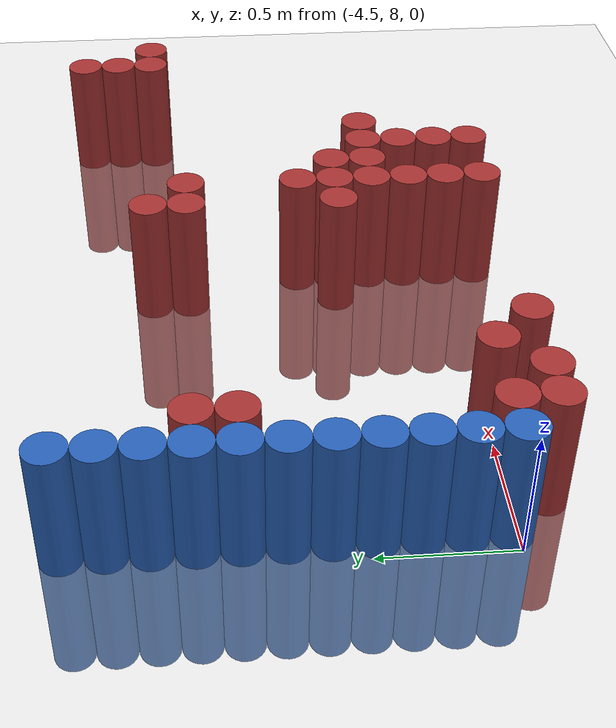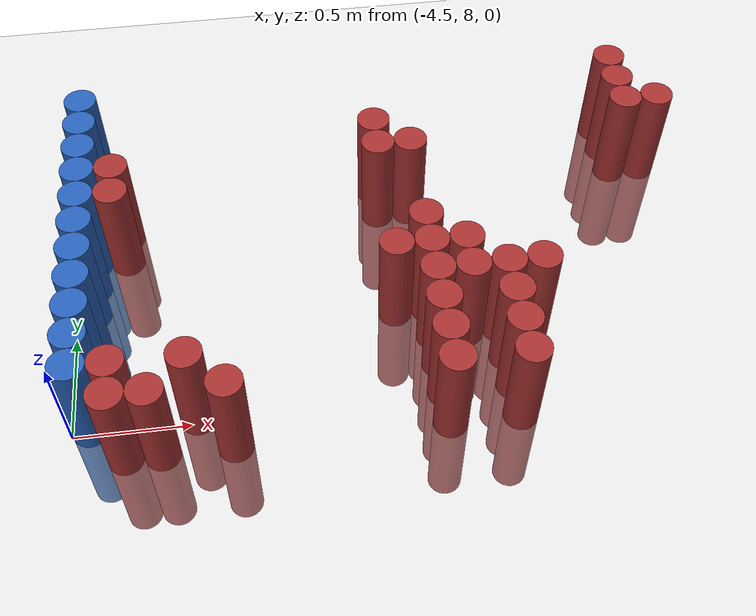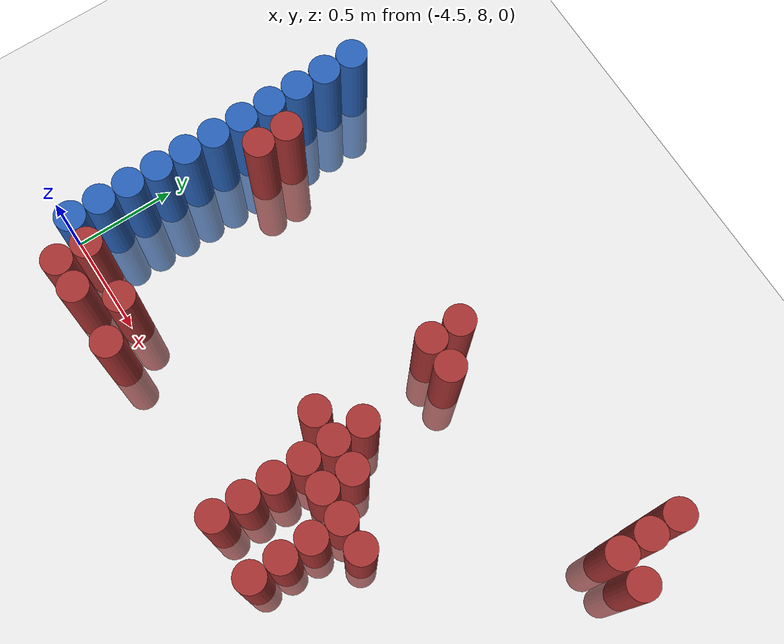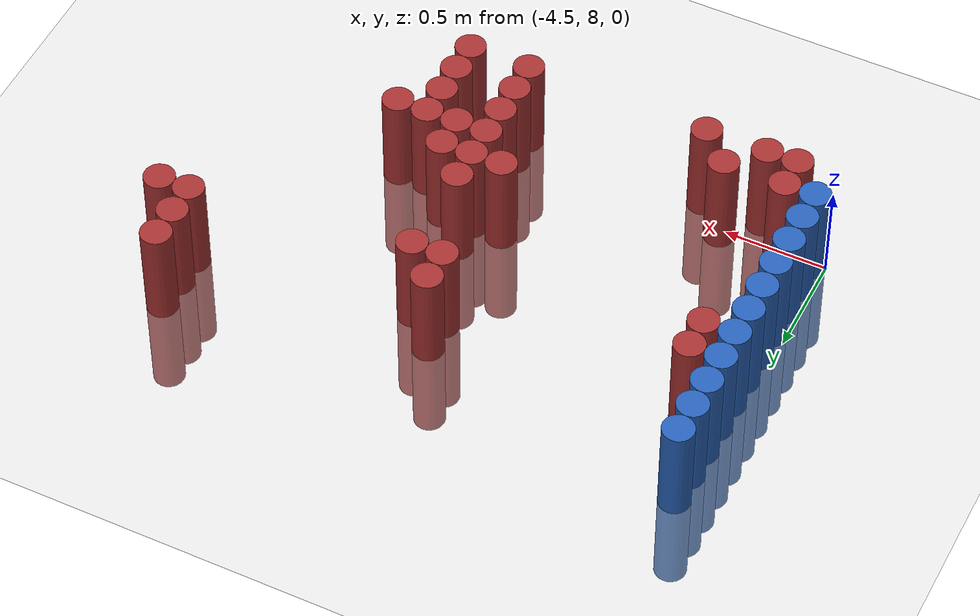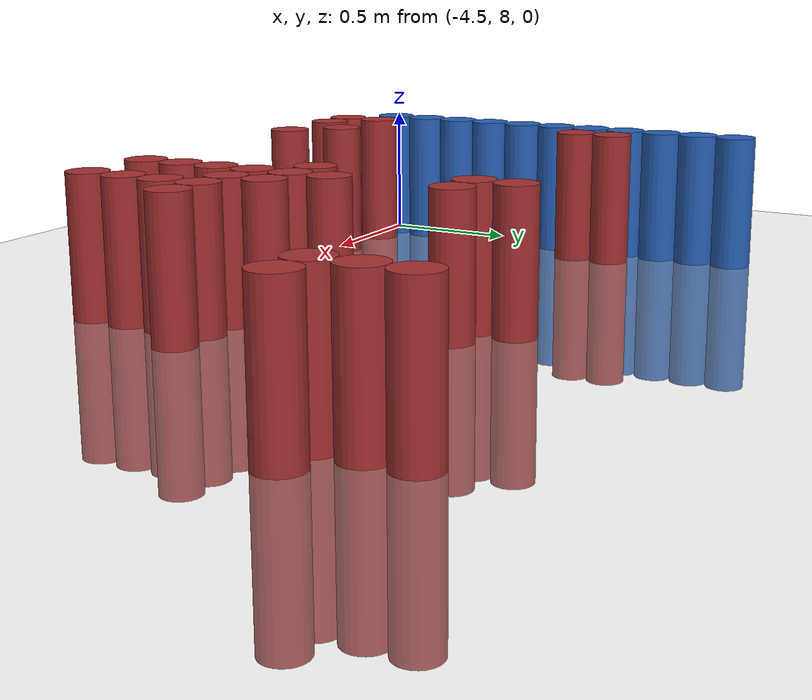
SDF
<sdf version="1.6">
 <world name="default">
  <model name="ground_plane">
   <static>1</static>
   <link name="link">
    <collision name="collision">
     <geometry><plane><normal>0 0 1</normal><size>100 100</size></plane></geometry>
     <surface><friction><ode><mu>100</mu><mu2>50</mu2></ode></friction></surface>
    </collision>
    <visual name="visual">
     <cast_shadows>0</cast_shadows>
     <geometry><plane><normal>0 0 1</normal><size>100 100</size></plane></geometry>
     <material>
      <script><uri>file://media/materials/scripts/gazebo.material</uri><name>Gazebo/Grey</name></script>
     </material>
    </visual>
   </link>
  </model>
  <model name="unit_cylinder_115">
   <static>1</static>
   <pose>-4.425000 8.025000 0.000000 0.000000 0.000000 0.000000</pose>
   <link name="link">
    <inertial>
     <mass>1</mass>
     <inertia><ixx>0.145833</ixx><ixy>0</ixy><ixz>0</ixz><iyy>0.145833</iyy><iyz>0</iyz><izz>0.125</izz></inertia>
    </inertial>
    <collision name="collision">
     <geometry><cylinder><radius>0.075000</radius><length>1</length></cylinder></geometry>
    </collision>
    <visual name="visual">
     <geometry><cylinder><radius>0.075000</radius><length>1</length></cylinder></geometry>
     <material>
      <ambient>0.152000 0.379000 0.720000 1</ambient>
      <diffuse>0.152000 0.379000 0.720000 1</diffuse>
     </material>
     <material>
      <script><name>Gazebo/Grey</name><uri>file://media/materials/scripts/gazebo.material</uri></script>
     </material>
    </visual>
    <sensor name="sensor_contact" type="contact"><contact><collision>collision</collision></contact></sensor>
   </link>
   <plugin filename="gz-sim-touchplugin-system" name="gz::sim::systems::TouchPlugin">
    <target>robot</target>
    <namespace>robot</namespace>
    <time>0.001</time>
    <enabled>true</enabled>
   </plugin>
  </model>
  <model name="unit_cylinder_116">
   <static>1</static>
   <pose>-4.425000 8.175000 0.000000 0.000000 0.000000 0.000000</pose>
   <link name="link">
    <inertial>
     <mass>1</mass>
     <inertia><ixx>0.145833</ixx><ixy>0</ixy><ixz>0</ixz><iyy>0.145833</iyy><iyz>0</iyz><izz>0.125</izz></inertia>
    </inertial>
    <collision name="collision">
     <geometry><cylinder><radius>0.075000</radius><length>1</length></cylinder></geometry>
    </collision>
    <visual name="visual">
     <geometry><cylinder><radius>0.075000</radius><length>1</length></cylinder></geometry>
     <material>
      <ambient>0.152000 0.379000 0.720000 1</ambient>
      <diffuse>0.152000 0.379000 0.720000 1</diffuse>
     </material>
     <material>
      <script><name>Gazebo/Grey</name><uri>file://media/materials/scripts/gazebo.material</uri></script>
     </material>
    </visual>
    <sensor name="sensor_contact" type="contact"><contact><collision>collision</collision></contact></sensor>
   </link>
   <plugin filename="gz-sim-touchplugin-system" name="gz::sim::systems::TouchPlugin">
    <target>robot</target>
    <namespace>robot</namespace>
    <time>0.001</time>
    <enabled>true</enabled>
   </plugin>
  </model>
  <model name="unit_cylinder_117">
   <static>1</static>
   <pose>-4.425000 8.325000 0.000000 0.000000 0.000000 0.000000</pose>
   <link name="link">
    <inertial>
     <mass>1</mass>
     <inertia><ixx>0.145833</ixx><ixy>0</ixy><ixz>0</ixz><iyy>0.145833</iyy><iyz>0</iyz><izz>0.125</izz></inertia>
    </inertial>
    <collision name="collision">
     <geometry><cylinder><radius>0.075000</radius><length>1</length></cylinder></geometry>
    </collision>
    <visual name="visual">
     <geometry><cylinder><radius>0.075000</radius><length>1</length></cylinder></geometry>
     <material>
      <ambient>0.152000 0.379000 0.720000 1</ambient>
      <diffuse>0.152000 0.379000 0.720000 1</diffuse>
     </material>
     <material>
      <script><name>Gazebo/Grey</name><uri>file://media/materials/scripts/gazebo.material</uri></script>
     </material>
    </visual>
    <sensor name="sensor_contact" type="contact"><contact><collision>collision</collision></contact></sensor>
   </link>
   <plugin filename="gz-sim-touchplugin-system" name="gz::sim::systems::TouchPlugin">
    <target>robot</target>
    <namespace>robot</namespace>
    <time>0.001</time>
    <enabled>true</enabled>
   </plugin>
  </model>
  <model name="unit_cylinder_118">
   <static>1</static>
   <pose>-4.425000 8.475000 0.000000 0.000000 0.000000 0.000000</pose>
   <link name="link">
    <inertial>
     <mass>1</mass>
     <inertia><ixx>0.145833</ixx><ixy>0</ixy><ixz>0</ixz><iyy>0.145833</iyy><iyz>0</iyz><izz>0.125</izz></inertia>
    </inertial>
    <collision name="collision">
     <geometry><cylinder><radius>0.075000</radius><length>1</length></cylinder></geometry>
    </collision>
    <visual name="visual">
     <geometry><cylinder><radius>0.075000</radius><length>1</length></cylinder></geometry>
     <material>
      <ambient>0.152000 0.379000 0.720000 1</ambient>
      <diffuse>0.152000 0.379000 0.720000 1</diffuse>
     </material>
     <material>
      <script><name>Gazebo/Grey</name><uri>file://media/materials/scripts/gazebo.material</uri></script>
     </material>
    </visual>
    <sensor name="sensor_contact" type="contact"><contact><collision>collision</collision></contact></sensor>
   </link>
   <plugin filename="gz-sim-touchplugin-system" name="gz::sim::systems::TouchPlugin">
    <target>robot</target>
    <namespace>robot</namespace>
    <time>0.001</time>
    <enabled>true</enabled>
   </plugin>
  </model>
  <model name="unit_cylinder_119">
   <static>1</static>
   <pose>-4.425000 8.625000 0.000000 0.000000 0.000000 0.000000</pose>
   <link name="link">
    <inertial>
     <mass>1</mass>
     <inertia><ixx>0.145833</ixx><ixy>0</ixy><ixz>0</ixz><iyy>0.145833</iyy><iyz>0</iyz><izz>0.125</izz></inertia>
    </inertial>
    <collision name="collision">
     <geometry><cylinder><radius>0.075000</radius><length>1</length></cylinder></geometry>
    </collision>
    <visual name="visual">
     <geometry><cylinder><radius>0.075000</radius><length>1</length></cylinder></geometry>
     <material>
      <ambient>0.152000 0.379000 0.720000 1</ambient>
      <diffuse>0.152000 0.379000 0.720000 1</diffuse>
     </material>
     <material>
      <script><name>Gazebo/Grey</name><uri>file://media/materials/scripts/gazebo.material</uri></script>
     </material>
    </visual>
    <sensor name="sensor_contact" type="contact"><contact><collision>collision</collision></contact></sensor>
   </link>
   <plugin filename="gz-sim-touchplugin-system" name="gz::sim::systems::TouchPlugin">
    <target>robot</target>
    <namespace>robot</namespace>
    <time>0.001</time>
    <enabled>true</enabled>
   </plugin>
  </model>
  <model name="unit_cylinder_120">
   <static>1</static>
   <pose>-4.425000 8.775000 0.000000 0.000000 0.000000 0.000000</pose>
   <link name="link">
    <inertial>
     <mass>1</mass>
     <inertia><ixx>0.145833</ixx><ixy>0</ixy><ixz>0</ixz><iyy>0.145833</iyy><iyz>0</iyz><izz>0.125</izz></inertia>
    </inertial>
    <collision name="collision">
     <geometry><cylinder><radius>0.075000</radius><length>1</length></cylinder></geometry>
    </collision>
    <visual name="visual">
     <geometry><cylinder><radius>0.075000</radius><length>1</length></cylinder></geometry>
     <material>
      <ambient>0.152000 0.379000 0.720000 1</ambient>
      <diffuse>0.152000 0.379000 0.720000 1</diffuse>
     </material>
     <material>
      <script><name>Gazebo/Grey</name><uri>file://media/materials/scripts/gazebo.material</uri></script>
     </material>
    </visual>
    <sensor name="sensor_contact" type="contact"><contact><collision>collision</collision></contact></sensor>
   </link>
   <plugin filename="gz-sim-touchplugin-system" name="gz::sim::systems::TouchPlugin">
    <target>robot</target>
    <namespace>robot</namespace>
    <time>0.001</time>
    <enabled>true</enabled>
   </plugin>
  </model>
  <model name="unit_cylinder_121">
   <static>1</static>
   <pose>-4.425000 8.925000 0.000000 0.000000 0.000000 0.000000</pose>
   <link name="link">
    <inertial>
     <mass>1</mass>
     <inertia><ixx>0.145833</ixx><ixy>0</ixy><ixz>0</ixz><iyy>0.145833</iyy><iyz>0</iyz><izz>0.125</izz></inertia>
    </inertial>
    <collision name="collision">
     <geometry><cylinder><radius>0.075000</radius><length>1</length></cylinder></geometry>
    </collision>
    <visual name="visual">
     <geometry><cylinder><radius>0.075000</radius><length>1</length></cylinder></geometry>
     <material>
      <ambient>0.152000 0.379000 0.720000 1</ambient>
      <diffuse>0.152000 0.379000 0.720000 1</diffuse>
     </material>
     <material>
      <script><name>Gazebo/Grey</name><uri>file://media/materials/scripts/gazebo.material</uri></script>
     </material>
    </visual>
    <sensor name="sensor_contact" type="contact"><contact><collision>collision</collision></contact></sensor>
   </link>
   <plugin filename="gz-sim-touchplugin-system" name="gz::sim::systems::TouchPlugin">
    <target>robot</target>
    <namespace>robot</namespace>
    <time>0.001</time>
    <enabled>true</enabled>
   </plugin>
  </model>
  <model name="unit_cylinder_122">
   <static>1</static>
   <pose>-4.425000 9.075000 0.000000 0.000000 0.000000 0.000000</pose>
   <link name="link">
    <inertial>
     <mass>1</mass>
     <inertia><ixx>0.145833</ixx><ixy>0</ixy><ixz>0</ixz><iyy>0.145833</iyy><iyz>0</iyz><izz>0.125</izz></inertia>
    </inertial>
    <collision name="collision">
     <geometry><cylinder><radius>0.075000</radius><length>1</length></cylinder></geometry>
    </collision>
    <visual name="visual">
     <geometry><cylinder><radius>0.075000</radius><length>1</length></cylinder></geometry>
     <material>
      <ambient>0.152000 0.379000 0.720000 1</ambient>
      <diffuse>0.152000 0.379000 0.720000 1</diffuse>
     </material>
     <material>
      <script><name>Gazebo/Grey</name><uri>file://media/materials/scripts/gazebo.material</uri></script>
     </material>
    </visual>
    <sensor name="sensor_contact" type="contact"><contact><collision>collision</collision></contact></sensor>
   </link>
   <plugin filename="gz-sim-touchplugin-system" name="gz::sim::systems::TouchPlugin">
    <target>robot</target>
    <namespace>robot</namespace>
    <time>0.001</time>
    <enabled>true</enabled>
   </plugin>
  </model>
  <model name="unit_cylinder_123">
   <static>1</static>
   <pose>-4.425000 9.225000 0.000000 0.000000 0.000000 0.000000</pose>
   <link name="link">
    <inertial>
     <mass>1</mass>
     <inertia><ixx>0.145833</ixx><ixy>0</ixy><ixz>0</ixz><iyy>0.145833</iyy><iyz>0</iyz><izz>0.125</izz></inertia>
    </inertial>
    <collision name="collision">
     <geometry><cylinder><radius>0.075000</radius><length>1</length></cylinder></geometry>
    </collision>
    <visual name="visual">
     <geometry><cylinder><radius>0.075000</radius><length>1</length></cylinder></geometry>
     <material>
      <ambient>0.152000 0.379000 0.720000 1</ambient>
      <diffuse>0.152000 0.379000 0.720000 1</diffuse>
     </material>
     <material>
      <script><name>Gazebo/Grey</name><uri>file://media/materials/scripts/gazebo.material</uri></script>
     </material>
    </visual>
    <sensor name="sensor_contact" type="contact"><contact><collision>collision</collision></contact></sensor>
   </link>
   <plugin filename="gz-sim-touchplugin-system" name="gz::sim::systems::TouchPlugin">
    <target>robot</target>
    <namespace>robot</namespace>
    <time>0.001</time>
    <enabled>true</enabled>
   </plugin>
  </model>
  <model name="unit_cylinder_124">
   <static>1</static>
   <pose>-4.425000 9.375000 0.000000 0.000000 0.000000 0.000000</pose>
   <link name="link">
    <inertial>
     <mass>1</mass>
     <inertia><ixx>0.145833</ixx><ixy>0</ixy><ixz>0</ixz><iyy>0.145833</iyy><iyz>0</iyz><izz>0.125</izz></inertia>
    </inertial>
    <collision name="collision">
     <geometry><cylinder><radius>0.075000</radius><length>1</length></cylinder></geometry>
    </collision>
    <visual name="visual">
     <geometry><cylinder><radius>0.075000</radius><length>1</length></cylinder></geometry>
     <material>
      <ambient>0.152000 0.379000 0.720000 1</ambient>
      <diffuse>0.152000 0.379000 0.720000 1</diffuse>
     </material>
     <material>
      <script><name>Gazebo/Grey</name><uri>file://media/materials/scripts/gazebo.material</uri></script>
     </material>
    </visual>
    <sensor name="sensor_contact" type="contact"><contact><collision>collision</collision></contact></sensor>
   </link>
   <plugin filename="gz-sim-touchplugin-system" name="gz::sim::systems::TouchPlugin">
    <target>robot</target>
    <namespace>robot</namespace>
    <time>0.001</time>
    <enabled>true</enabled>
   </plugin>
  </model>
  <model name="unit_cylinder_125">
   <static>1</static>
   <pose>-4.425000 9.525000 0.000000 0.000000 0.000000 0.000000</pose>
   <link name="link">
    <inertial>
     <mass>1</mass>
     <inertia><ixx>0.145833</ixx><ixy>0</ixy><ixz>0</ixz><iyy>0.145833</iyy><iyz>0</iyz><izz>0.125</izz></inertia>
    </inertial>
    <collision name="collision">
     <geometry><cylinder><radius>0.075000</radius><length>1</length></cylinder></geometry>
    </collision>
    <visual name="visual">
     <geometry><cylinder><radius>0.075000</radius><length>1</length></cylinder></geometry>
     <material>
      <ambient>0.152000 0.379000 0.720000 1</ambient>
      <diffuse>0.152000 0.379000 0.720000 1</diffuse>
     </material>
     <material>
      <script><name>Gazebo/Grey</name><uri>file://media/materials/scripts/gazebo.material</uri></script>
     </material>
    </visual>
    <sensor name="sensor_contact" type="contact"><contact><collision>collision</collision></contact></sensor>
   </link>
   <plugin filename="gz-sim-touchplugin-system" name="gz::sim::systems::TouchPlugin">
    <target>robot</target>
    <namespace>robot</namespace>
    <time>0.001</time>
    <enabled>true</enabled>
   </plugin>
  </model>
  <model name="unit_cylinder_139">
   <static>1</static>
   <pose>-4.275000 7.875000 0.000000 0.000000 0.000000 0.000000</pose>
   <link name="link">
    <inertial>
     <mass>1</mass>
     <inertia><ixx>0.145833</ixx><ixy>0</ixy><ixz>0</ixz><iyy>0.145833</iyy><iyz>0</iyz><izz>0.125</izz></inertia>
    </inertial>
    <collision name="collision">
     <geometry><cylinder><radius>0.075000</radius><length>1</length></cylinder></geometry>
    </collision>
    <visual name="visual">
     <geometry><cylinder><radius>0.075000</radius><length>1</length></cylinder></geometry>
     <material>
      <ambient>0.648000 0.192000 0.192000 1</ambient>
      <diffuse>0.648000 0.192000 0.192000 1</diffuse>
     </material>
     <material>
      <script><name>Gazebo/Grey</name><uri>file://media/materials/scripts/gazebo.material</uri></script>
     </material>
    </visual>
    <sensor name="sensor_contact" type="contact"><contact><collision>collision</collision></contact></sensor>
   </link>
   <plugin filename="gz-sim-touchplugin-system" name="gz::sim::systems::TouchPlugin">
    <target>robot</target>
    <namespace>robot</namespace>
    <time>0.001</time>
    <enabled>true</enabled>
   </plugin>
  </model>
  <model name="unit_cylinder_140">
   <static>1</static>
   <pose>-4.275000 8.025000 0.000000 0.000000 0.000000 0.000000</pose>
   <link name="link">
    <inertial>
     <mass>1</mass>
     <inertia><ixx>0.145833</ixx><ixy>0</ixy><ixz>0</ixz><iyy>0.145833</iyy><iyz>0</iyz><izz>0.125</izz></inertia>
    </inertial>
    <collision name="collision">
     <geometry><cylinder><radius>0.075000</radius><length>1</length></cylinder></geometry>
    </collision>
    <visual name="visual">
     <geometry><cylinder><radius>0.075000</radius><length>1</length></cylinder></geometry>
     <material>
      <ambient>0.648000 0.192000 0.192000 1</ambient>
      <diffuse>0.648000 0.192000 0.192000 1</diffuse>
     </material>
     <material>
      <script><name>Gazebo/Grey</name><uri>file://media/materials/scripts/gazebo.material</uri></script>
     </material>
    </visual>
    <sensor name="sensor_contact" type="contact"><contact><collision>collision</collision></contact></sensor>
   </link>
   <plugin filename="gz-sim-touchplugin-system" name="gz::sim::systems::TouchPlugin">
    <target>robot</target>
    <namespace>robot</namespace>
    <time>0.001</time>
    <enabled>true</enabled>
   </plugin>
  </model>
  <model name="unit_cylinder_141">
   <static>1</static>
   <pose>-4.275000 8.925000 0.000000 0.000000 0.000000 0.000000</pose>
   <link name="link">
    <inertial>
     <mass>1</mass>
     <inertia><ixx>0.145833</ixx><ixy>0</ixy><ixz>0</ixz><iyy>0.145833</iyy><iyz>0</iyz><izz>0.125</izz></inertia>
    </inertial>
    <collision name="collision">
     <geometry><cylinder><radius>0.075000</radius><length>1</length></cylinder></geometry>
    </collision>
    <visual name="visual">
     <geometry><cylinder><radius>0.075000</radius><length>1</length></cylinder></geometry>
     <material>
      <ambient>0.648000 0.192000 0.192000 1</ambient>
      <diffuse>0.648000 0.192000 0.192000 1</diffuse>
     </material>
     <material>
      <script><name>Gazebo/Grey</name><uri>file://media/materials/scripts/gazebo.material</uri></script>
     </material>
    </visual>
    <sensor name="sensor_contact" type="contact"><contact><collision>collision</collision></contact></sensor>
   </link>
   <plugin filename="gz-sim-touchplugin-system" name="gz::sim::systems::TouchPlugin">
    <target>robot</target>
    <namespace>robot</namespace>
    <time>0.001</time>
    <enabled>true</enabled>
   </plugin>
  </model>
  <model name="unit_cylinder_142">
   <static>1</static>
   <pose>-4.275000 9.075000 0.000000 0.000000 0.000000 0.000000</pose>
   <link name="link">
    <inertial>
     <mass>1</mass>
     <inertia><ixx>0.145833</ixx><ixy>0</ixy><ixz>0</ixz><iyy>0.145833</iyy><iyz>0</iyz><izz>0.125</izz></inertia>
    </inertial>
    <collision name="collision">
     <geometry><cylinder><radius>0.075000</radius><length>1</length></cylinder></geometry>
    </collision>
    <visual name="visual">
     <geometry><cylinder><radius>0.075000</radius><length>1</length></cylinder></geometry>
     <material>
      <ambient>0.648000 0.192000 0.192000 1</ambient>
      <diffuse>0.648000 0.192000 0.192000 1</diffuse>
     </material>
     <material>
      <script><name>Gazebo/Grey</name><uri>file://media/materials/scripts/gazebo.material</uri></script>
     </material>
    </visual>
    <sensor name="sensor_contact" type="contact"><contact><collision>collision</collision></contact></sensor>
   </link>
   <plugin filename="gz-sim-touchplugin-system" name="gz::sim::systems::TouchPlugin">
    <target>robot</target>
    <namespace>robot</namespace>
    <time>0.001</time>
    <enabled>true</enabled>
   </plugin>
  </model>
  <model name="unit_cylinder_150">
   <static>1</static>
   <pose>-4.125000 7.875000 0.000000 0.000000 0.000000 0.000000</pose>
   <link name="link">
    <inertial>
     <mass>1</mass>
     <inertia><ixx>0.145833</ixx><ixy>0</ixy><ixz>0</ixz><iyy>0.145833</iyy><iyz>0</iyz><izz>0.125</izz></inertia>
    </inertial>
    <collision name="collision">
     <geometry><cylinder><radius>0.075000</radius><length>1</length></cylinder></geometry>
    </collision>
    <visual name="visual">
     <geometry><cylinder><radius>0.075000</radius><length>1</length></cylinder></geometry>
     <material>
      <ambient>0.648000 0.192000 0.192000 1</ambient>
      <diffuse>0.648000 0.192000 0.192000 1</diffuse>
     </material>
     <material>
      <script><name>Gazebo/Grey</name><uri>file://media/materials/scripts/gazebo.material</uri></script>
     </material>
    </visual>
    <sensor name="sensor_contact" type="contact"><contact><collision>collision</collision></contact></sensor>
   </link>
   <plugin filename="gz-sim-touchplugin-system" name="gz::sim::systems::TouchPlugin">
    <target>robot</target>
    <namespace>robot</namespace>
    <time>0.001</time>
    <enabled>true</enabled>
   </plugin>
  </model>
  <model name="unit_cylinder_155">
   <static>1</static>
   <pose>-3.975000 8.025000 0.000000 0.000000 0.000000 0.000000</pose>
   <link name="link">
    <inertial>
     <mass>1</mass>
     <inertia><ixx>0.145833</ixx><ixy>0</ixy><ixz>0</ixz><iyy>0.145833</iyy><iyz>0</iyz><izz>0.125</izz></inertia>
    </inertial>
    <collision name="collision">
     <geometry><cylinder><radius>0.075000</radius><length>1</length></cylinder></geometry>
    </collision>
    <visual name="visual">
     <geometry><cylinder><radius>0.075000</radius><length>1</length></cylinder></geometry>
     <material>
      <ambient>0.648000 0.192000 0.192000 1</ambient>
      <diffuse>0.648000 0.192000 0.192000 1</diffuse>
     </material>
     <material>
      <script><name>Gazebo/Grey</name><uri>file://media/materials/scripts/gazebo.material</uri></script>
     </material>
    </visual>
    <sensor name="sensor_contact" type="contact"><contact><collision>collision</collision></contact></sensor>
   </link>
   <plugin filename="gz-sim-touchplugin-system" name="gz::sim::systems::TouchPlugin">
    <target>robot</target>
    <namespace>robot</namespace>
    <time>0.001</time>
    <enabled>true</enabled>
   </plugin>
  </model>
  <model name="unit_cylinder_163">
   <static>1</static>
   <pose>-3.825000 7.875000 0.000000 0.000000 0.000000 0.000000</pose>
   <link name="link">
    <inertial>
     <mass>1</mass>
     <inertia><ixx>0.145833</ixx><ixy>0</ixy><ixz>0</ixz><iyy>0.145833</iyy><iyz>0</iyz><izz>0.125</izz></inertia>
    </inertial>
    <collision name="collision">
     <geometry><cylinder><radius>0.075000</radius><length>1</length></cylinder></geometry>
    </collision>
    <visual name="visual">
     <geometry><cylinder><radius>0.075000</radius><length>1</length></cylinder></geometry>
     <material>
      <ambient>0.648000 0.192000 0.192000 1</ambient>
      <diffuse>0.648000 0.192000 0.192000 1</diffuse>
     </material>
     <material>
      <script><name>Gazebo/Grey</name><uri>file://media/materials/scripts/gazebo.material</uri></script>
     </material>
    </visual>
    <sensor name="sensor_contact" type="contact"><contact><collision>collision</collision></contact></sensor>
   </link>
   <plugin filename="gz-sim-touchplugin-system" name="gz::sim::systems::TouchPlugin">
    <target>robot</target>
    <namespace>robot</namespace>
    <time>0.001</time>
    <enabled>true</enabled>
   </plugin>
  </model>
  <model name="unit_cylinder_173">
   <static>1</static>
   <pose>-3.075000 8.475000 0.000000 0.000000 0.000000 0.000000</pose>
   <link name="link">
    <inertial>
     <mass>1</mass>
     <inertia><ixx>0.145833</ixx><ixy>0</ixy><ixz>0</ixz><iyy>0.145833</iyy><iyz>0</iyz><izz>0.125</izz></inertia>
    </inertial>
    <collision name="collision">
     <geometry><cylinder><radius>0.075000</radius><length>1</length></cylinder></geometry>
    </collision>
    <visual name="visual">
     <geometry><cylinder><radius>0.075000</radius><length>1</length></cylinder></geometry>
     <material>
      <ambient>0.648000 0.192000 0.192000 1</ambient>
      <diffuse>0.648000 0.192000 0.192000 1</diffuse>
     </material>
     <material>
      <script><name>Gazebo/Grey</name><uri>file://media/materials/scripts/gazebo.material</uri></script>
     </material>
    </visual>
    <sensor name="sensor_contact" type="contact"><contact><collision>collision</collision></contact></sensor>
   </link>
   <plugin filename="gz-sim-touchplugin-system" name="gz::sim::systems::TouchPlugin">
    <target>robot</target>
    <namespace>robot</namespace>
    <time>0.001</time>
    <enabled>true</enabled>
   </plugin>
  </model>
  <model name="unit_cylinder_174">
   <static>1</static>
   <pose>-3.075000 9.075000 0.000000 0.000000 0.000000 0.000000</pose>
   <link name="link">
    <inertial>
     <mass>1</mass>
     <inertia><ixx>0.145833</ixx><ixy>0</ixy><ixz>0</ixz><iyy>0.145833</iyy><iyz>0</iyz><izz>0.125</izz></inertia>
    </inertial>
    <collision name="collision">
     <geometry><cylinder><radius>0.075000</radius><length>1</length></cylinder></geometry>
    </collision>
    <visual name="visual">
     <geometry><cylinder><radius>0.075000</radius><length>1</length></cylinder></geometry>
     <material>
      <ambient>0.648000 0.192000 0.192000 1</ambient>
      <diffuse>0.648000 0.192000 0.192000 1</diffuse>
     </material>
     <material>
      <script><name>Gazebo/Grey</name><uri>file://media/materials/scripts/gazebo.material</uri></script>
     </material>
    </visual>
    <sensor name="sensor_contact" type="contact"><contact><collision>collision</collision></contact></sensor>
   </link>
   <plugin filename="gz-sim-touchplugin-system" name="gz::sim::systems::TouchPlugin">
    <target>robot</target>
    <namespace>robot</namespace>
    <time>0.001</time>
    <enabled>true</enabled>
   </plugin>
  </model>
  <model name="unit_cylinder_175">
   <static>1</static>
   <pose>-3.075000 9.225000 0.000000 0.000000 0.000000 0.000000</pose>
   <link name="link">
    <inertial>
     <mass>1</mass>
     <inertia><ixx>0.145833</ixx><ixy>0</ixy><ixz>0</ixz><iyy>0.145833</iyy><iyz>0</iyz><izz>0.125</izz></inertia>
    </inertial>
    <collision name="collision">
     <geometry><cylinder><radius>0.075000</radius><length>1</length></cylinder></geometry>
    </collision>
    <visual name="visual">
     <geometry><cylinder><radius>0.075000</radius><length>1</length></cylinder></geometry>
     <material>
      <ambient>0.648000 0.192000 0.192000 1</ambient>
      <diffuse>0.648000 0.192000 0.192000 1</diffuse>
     </material>
     <material>
      <script><name>Gazebo/Grey</name><uri>file://media/materials/scripts/gazebo.material</uri></script>
     </material>
    </visual>
    <sensor name="sensor_contact" type="contact"><contact><collision>collision</collision></contact></sensor>
   </link>
   <plugin filename="gz-sim-touchplugin-system" name="gz::sim::systems::TouchPlugin">
    <target>robot</target>
    <namespace>robot</namespace>
    <time>0.001</time>
    <enabled>true</enabled>
   </plugin>
  </model>
  <model name="unit_cylinder_178">
   <static>1</static>
   <pose>-2.925000 7.875000 0.000000 0.000000 0.000000 0.000000</pose>
   <link name="link">
    <inertial>
     <mass>1</mass>
     <inertia><ixx>0.145833</ixx><ixy>0</ixy><ixz>0</ixz><iyy>0.145833</iyy><iyz>0</iyz><izz>0.125</izz></inertia>
    </inertial>
    <collision name="collision">
     <geometry><cylinder><radius>0.075000</radius><length>1</length></cylinder></geometry>
    </collision>
    <visual name="visual">
     <geometry><cylinder><radius>0.075000</radius><length>1</length></cylinder></geometry>
     <material>
      <ambient>0.648000 0.192000 0.192000 1</ambient>
      <diffuse>0.648000 0.192000 0.192000 1</diffuse>
     </material>
     <material>
      <script><name>Gazebo/Grey</name><uri>file://media/materials/scripts/gazebo.material</uri></script>
     </material>
    </visual>
    <sensor name="sensor_contact" type="contact"><contact><collision>collision</collision></contact></sensor>
   </link>
   <plugin filename="gz-sim-touchplugin-system" name="gz::sim::systems::TouchPlugin">
    <target>robot</target>
    <namespace>robot</namespace>
    <time>0.001</time>
    <enabled>true</enabled>
   </plugin>
  </model>
  <model name="unit_cylinder_179">
   <static>1</static>
   <pose>-2.925000 8.025000 0.000000 0.000000 0.000000 0.000000</pose>
   <link name="link">
    <inertial>
     <mass>1</mass>
     <inertia><ixx>0.145833</ixx><ixy>0</ixy><ixz>0</ixz><iyy>0.145833</iyy><iyz>0</iyz><izz>0.125</izz></inertia>
    </inertial>
    <collision name="collision">
     <geometry><cylinder><radius>0.075000</radius><length>1</length></cylinder></geometry>
    </collision>
    <visual name="visual">
     <geometry><cylinder><radius>0.075000</radius><length>1</length></cylinder></geometry>
     <material>
      <ambient>0.648000 0.192000 0.192000 1</ambient>
      <diffuse>0.648000 0.192000 0.192000 1</diffuse>
     </material>
     <material>
      <script><name>Gazebo/Grey</name><uri>file://media/materials/scripts/gazebo.material</uri></script>
     </material>
    </visual>
    <sensor name="sensor_contact" type="contact"><contact><collision>collision</collision></contact></sensor>
   </link>
   <plugin filename="gz-sim-touchplugin-system" name="gz::sim::systems::TouchPlugin">
    <target>robot</target>
    <namespace>robot</namespace>
    <time>0.001</time>
    <enabled>true</enabled>
   </plugin>
  </model>
  <model name="unit_cylinder_180">
   <static>1</static>
   <pose>-2.925000 8.175000 0.000000 0.000000 0.000000 0.000000</pose>
   <link name="link">
    <inertial>
     <mass>1</mass>
     <inertia><ixx>0.145833</ixx><ixy>0</ixy><ixz>0</ixz><iyy>0.145833</iyy><iyz>0</iyz><izz>0.125</izz></inertia>
    </inertial>
    <collision name="collision">
     <geometry><cylinder><radius>0.075000</radius><length>1</length></cylinder></geometry>
    </collision>
    <visual name="visual">
     <geometry><cylinder><radius>0.075000</radius><length>1</length></cylinder></geometry>
     <material>
      <ambient>0.648000 0.192000 0.192000 1</ambient>
      <diffuse>0.648000 0.192000 0.192000 1</diffuse>
     </material>
     <material>
      <script><name>Gazebo/Grey</name><uri>file://media/materials/scripts/gazebo.material</uri></script>
     </material>
    </visual>
    <sensor name="sensor_contact" type="contact"><contact><collision>collision</collision></contact></sensor>
   </link>
   <plugin filename="gz-sim-touchplugin-system" name="gz::sim::systems::TouchPlugin">
    <target>robot</target>
    <namespace>robot</namespace>
    <time>0.001</time>
    <enabled>true</enabled>
   </plugin>
  </model>
  <model name="unit_cylinder_181">
   <static>1</static>
   <pose>-2.925000 8.325000 0.000000 0.000000 0.000000 0.000000</pose>
   <link name="link">
    <inertial>
     <mass>1</mass>
     <inertia><ixx>0.145833</ixx><ixy>0</ixy><ixz>0</ixz><iyy>0.145833</iyy><iyz>0</iyz><izz>0.125</izz></inertia>
    </inertial>
    <collision name="collision">
     <geometry><cylinder><radius>0.075000</radius><length>1</length></cylinder></geometry>
    </collision>
    <visual name="visual">
     <geometry><cylinder><radius>0.075000</radius><length>1</length></cylinder></geometry>
     <material>
      <ambient>0.648000 0.192000 0.192000 1</ambient>
      <diffuse>0.648000 0.192000 0.192000 1</diffuse>
     </material>
     <material>
      <script><name>Gazebo/Grey</name><uri>file://media/materials/scripts/gazebo.material</uri></script>
     </material>
    </visual>
    <sensor name="sensor_contact" type="contact"><contact><collision>collision</collision></contact></sensor>
   </link>
   <plugin filename="gz-sim-touchplugin-system" name="gz::sim::systems::TouchPlugin">
    <target>robot</target>
    <namespace>robot</namespace>
    <time>0.001</time>
    <enabled>true</enabled>
   </plugin>
  </model>
  <model name="unit_cylinder_182">
   <static>1</static>
   <pose>-2.925000 8.475000 0.000000 0.000000 0.000000 0.000000</pose>
   <link name="link">
    <inertial>
     <mass>1</mass>
     <inertia><ixx>0.145833</ixx><ixy>0</ixy><ixz>0</ixz><iyy>0.145833</iyy><iyz>0</iyz><izz>0.125</izz></inertia>
    </inertial>
    <collision name="collision">
     <geometry><cylinder><radius>0.075000</radius><length>1</length></cylinder></geometry>
    </collision>
    <visual name="visual">
     <geometry><cylinder><radius>0.075000</radius><length>1</length></cylinder></geometry>
     <material>
      <ambient>0.648000 0.192000 0.192000 1</ambient>
      <diffuse>0.648000 0.192000 0.192000 1</diffuse>
     </material>
     <material>
      <script><name>Gazebo/Grey</name><uri>file://media/materials/scripts/gazebo.material</uri></script>
     </material>
    </visual>
    <sensor name="sensor_contact" type="contact"><contact><collision>collision</collision></contact></sensor>
   </link>
   <plugin filename="gz-sim-touchplugin-system" name="gz::sim::systems::TouchPlugin">
    <target>robot</target>
    <namespace>robot</namespace>
    <time>0.001</time>
    <enabled>true</enabled>
   </plugin>
  </model>
  <model name="unit_cylinder_183">
   <static>1</static>
   <pose>-2.925000 8.625000 0.000000 0.000000 0.000000 0.000000</pose>
   <link name="link">
    <inertial>
     <mass>1</mass>
     <inertia><ixx>0.145833</ixx><ixy>0</ixy><ixz>0</ixz><iyy>0.145833</iyy><iyz>0</iyz><izz>0.125</izz></inertia>
    </inertial>
    <collision name="collision">
     <geometry><cylinder><radius>0.075000</radius><length>1</length></cylinder></geometry>
    </collision>
    <visual name="visual">
     <geometry><cylinder><radius>0.075000</radius><length>1</length></cylinder></geometry>
     <material>
      <ambient>0.648000 0.192000 0.192000 1</ambient>
      <diffuse>0.648000 0.192000 0.192000 1</diffuse>
     </material>
     <material>
      <script><name>Gazebo/Grey</name><uri>file://media/materials/scripts/gazebo.material</uri></script>
     </material>
    </visual>
    <sensor name="sensor_contact" type="contact"><contact><collision>collision</collision></contact></sensor>
   </link>
   <plugin filename="gz-sim-touchplugin-system" name="gz::sim::systems::TouchPlugin">
    <target>robot</target>
    <namespace>robot</namespace>
    <time>0.001</time>
    <enabled>true</enabled>
   </plugin>
  </model>
  <model name="unit_cylinder_184">
   <static>1</static>
   <pose>-2.925000 9.075000 0.000000 0.000000 0.000000 0.000000</pose>
   <link name="link">
    <inertial>
     <mass>1</mass>
     <inertia><ixx>0.145833</ixx><ixy>0</ixy><ixz>0</ixz><iyy>0.145833</iyy><iyz>0</iyz><izz>0.125</izz></inertia>
    </inertial>
    <collision name="collision">
     <geometry><cylinder><radius>0.075000</radius><length>1</length></cylinder></geometry>
    </collision>
    <visual name="visual">
     <geometry><cylinder><radius>0.075000</radius><length>1</length></cylinder></geometry>
     <material>
      <ambient>0.648000 0.192000 0.192000 1</ambient>
      <diffuse>0.648000 0.192000 0.192000 1</diffuse>
     </material>
     <material>
      <script><name>Gazebo/Grey</name><uri>file://media/materials/scripts/gazebo.material</uri></script>
     </material>
    </visual>
    <sensor name="sensor_contact" type="contact"><contact><collision>collision</collision></contact></sensor>
   </link>
   <plugin filename="gz-sim-touchplugin-system" name="gz::sim::systems::TouchPlugin">
    <target>robot</target>
    <namespace>robot</namespace>
    <time>0.001</time>
    <enabled>true</enabled>
   </plugin>
  </model>
  <model name="unit_cylinder_186">
   <static>1</static>
   <pose>-2.775000 8.325000 0.000000 0.000000 0.000000 0.000000</pose>
   <link name="link">
    <inertial>
     <mass>1</mass>
     <inertia><ixx>0.145833</ixx><ixy>0</ixy><ixz>0</ixz><iyy>0.145833</iyy><iyz>0</iyz><izz>0.125</izz></inertia>
    </inertial>
    <collision name="collision">
     <geometry><cylinder><radius>0.075000</radius><length>1</length></cylinder></geometry>
    </collision>
    <visual name="visual">
     <geometry><cylinder><radius>0.075000</radius><length>1</length></cylinder></geometry>
     <material>
      <ambient>0.648000 0.192000 0.192000 1</ambient>
      <diffuse>0.648000 0.192000 0.192000 1</diffuse>
     </material>
     <material>
      <script><name>Gazebo/Grey</name><uri>file://media/materials/scripts/gazebo.material</uri></script>
     </material>
    </visual>
    <sensor name="sensor_contact" type="contact"><contact><collision>collision</collision></contact></sensor>
   </link>
   <plugin filename="gz-sim-touchplugin-system" name="gz::sim::systems::TouchPlugin">
    <target>robot</target>
    <namespace>robot</namespace>
    <time>0.001</time>
    <enabled>true</enabled>
   </plugin>
  </model>
  <model name="unit_cylinder_187">
   <static>1</static>
   <pose>-2.775000 8.475000 0.000000 0.000000 0.000000 0.000000</pose>
   <link name="link">
    <inertial>
     <mass>1</mass>
     <inertia><ixx>0.145833</ixx><ixy>0</ixy><ixz>0</ixz><iyy>0.145833</iyy><iyz>0</iyz><izz>0.125</izz></inertia>
    </inertial>
    <collision name="collision">
     <geometry><cylinder><radius>0.075000</radius><length>1</length></cylinder></geometry>
    </collision>
    <visual name="visual">
     <geometry><cylinder><radius>0.075000</radius><length>1</length></cylinder></geometry>
     <material>
      <ambient>0.648000 0.192000 0.192000 1</ambient>
      <diffuse>0.648000 0.192000 0.192000 1</diffuse>
     </material>
     <material>
      <script><name>Gazebo/Grey</name><uri>file://media/materials/scripts/gazebo.material</uri></script>
     </material>
    </visual>
    <sensor name="sensor_contact" type="contact"><contact><collision>collision</collision></contact></sensor>
   </link>
   <plugin filename="gz-sim-touchplugin-system" name="gz::sim::systems::TouchPlugin">
    <target>robot</target>
    <namespace>robot</namespace>
    <time>0.001</time>
    <enabled>true</enabled>
   </plugin>
  </model>
  <model name="unit_cylinder_190">
   <static>1</static>
   <pose>-2.625000 7.875000 0.000000 0.000000 0.000000 0.000000</pose>
   <link name="link">
    <inertial>
     <mass>1</mass>
     <inertia><ixx>0.145833</ixx><ixy>0</ixy><ixz>0</ixz><iyy>0.145833</iyy><iyz>0</iyz><izz>0.125</izz></inertia>
    </inertial>
    <collision name="collision">
     <geometry><cylinder><radius>0.075000</radius><length>1</length></cylinder></geometry>
    </collision>
    <visual name="visual">
     <geometry><cylinder><radius>0.075000</radius><length>1</length></cylinder></geometry>
     <material>
      <ambient>0.648000 0.192000 0.192000 1</ambient>
      <diffuse>0.648000 0.192000 0.192000 1</diffuse>
     </material>
     <material>
      <script><name>Gazebo/Grey</name><uri>file://media/materials/scripts/gazebo.material</uri></script>
     </material>
    </visual>
    <sensor name="sensor_contact" type="contact"><contact><collision>collision</collision></contact></sensor>
   </link>
   <plugin filename="gz-sim-touchplugin-system" name="gz::sim::systems::TouchPlugin">
    <target>robot</target>
    <namespace>robot</namespace>
    <time>0.001</time>
    <enabled>true</enabled>
   </plugin>
  </model>
  <model name="unit_cylinder_191">
   <static>1</static>
   <pose>-2.625000 8.025000 0.000000 0.000000 0.000000 0.000000</pose>
   <link name="link">
    <inertial>
     <mass>1</mass>
     <inertia><ixx>0.145833</ixx><ixy>0</ixy><ixz>0</ixz><iyy>0.145833</iyy><iyz>0</iyz><izz>0.125</izz></inertia>
    </inertial>
    <collision name="collision">
     <geometry><cylinder><radius>0.075000</radius><length>1</length></cylinder></geometry>
    </collision>
    <visual name="visual">
     <geometry><cylinder><radius>0.075000</radius><length>1</length></cylinder></geometry>
     <material>
      <ambient>0.648000 0.192000 0.192000 1</ambient>
      <diffuse>0.648000 0.192000 0.192000 1</diffuse>
     </material>
     <material>
      <script><name>Gazebo/Grey</name><uri>file://media/materials/scripts/gazebo.material</uri></script>
     </material>
    </visual>
    <sensor name="sensor_contact" type="contact"><contact><collision>collision</collision></contact></sensor>
   </link>
   <plugin filename="gz-sim-touchplugin-system" name="gz::sim::systems::TouchPlugin">
    <target>robot</target>
    <namespace>robot</namespace>
    <time>0.001</time>
    <enabled>true</enabled>
   </plugin>
  </model>
  <model name="unit_cylinder_192">
   <static>1</static>
   <pose>-2.625000 8.175000 0.000000 0.000000 0.000000 0.000000</pose>
   <link name="link">
    <inertial>
     <mass>1</mass>
     <inertia><ixx>0.145833</ixx><ixy>0</ixy><ixz>0</ixz><iyy>0.145833</iyy><iyz>0</iyz><izz>0.125</izz></inertia>
    </inertial>
    <collision name="collision">
     <geometry><cylinder><radius>0.075000</radius><length>1</length></cylinder></geometry>
    </collision>
    <visual name="visual">
     <geometry><cylinder><radius>0.075000</radius><length>1</length></cylinder></geometry>
     <material>
      <ambient>0.648000 0.192000 0.192000 1</ambient>
      <diffuse>0.648000 0.192000 0.192000 1</diffuse>
     </material>
     <material>
      <script><name>Gazebo/Grey</name><uri>file://media/materials/scripts/gazebo.material</uri></script>
     </material>
    </visual>
    <sensor name="sensor_contact" type="contact"><contact><collision>collision</collision></contact></sensor>
   </link>
   <plugin filename="gz-sim-touchplugin-system" name="gz::sim::systems::TouchPlugin">
    <target>robot</target>
    <namespace>robot</namespace>
    <time>0.001</time>
    <enabled>true</enabled>
   </plugin>
  </model>
  <model name="unit_cylinder_193">
   <static>1</static>
   <pose>-2.625000 8.325000 0.000000 0.000000 0.000000 0.000000</pose>
   <link name="link">
    <inertial>
     <mass>1</mass>
     <inertia><ixx>0.145833</ixx><ixy>0</ixy><ixz>0</ixz><iyy>0.145833</iyy><iyz>0</iyz><izz>0.125</izz></inertia>
    </inertial>
    <collision name="collision">
     <geometry><cylinder><radius>0.075000</radius><length>1</length></cylinder></geometry>
    </collision>
    <visual name="visual">
     <geometry><cylinder><radius>0.075000</radius><length>1</length></cylinder></geometry>
     <material>
      <ambient>0.648000 0.192000 0.192000 1</ambient>
      <diffuse>0.648000 0.192000 0.192000 1</diffuse>
     </material>
     <material>
      <script><name>Gazebo/Grey</name><uri>file://media/materials/scripts/gazebo.material</uri></script>
     </material>
    </visual>
    <sensor name="sensor_contact" type="contact"><contact><collision>collision</collision></contact></sensor>
   </link>
   <plugin filename="gz-sim-touchplugin-system" name="gz::sim::systems::TouchPlugin">
    <target>robot</target>
    <namespace>robot</namespace>
    <time>0.001</time>
    <enabled>true</enabled>
   </plugin>
  </model>
  <model name="unit_cylinder_197">
   <static>1</static>
   <pose>-2.475000 8.325000 0.000000 0.000000 0.000000 0.000000</pose>
   <link name="link">
    <inertial>
     <mass>1</mass>
     <inertia><ixx>0.145833</ixx><ixy>0</ixy><ixz>0</ixz><iyy>0.145833</iyy><iyz>0</iyz><izz>0.125</izz></inertia>
    </inertial>
    <collision name="collision">
     <geometry><cylinder><radius>0.075000</radius><length>1</length></cylinder></geometry>
    </collision>
    <visual name="visual">
     <geometry><cylinder><radius>0.075000</radius><length>1</length></cylinder></geometry>
     <material>
      <ambient>0.648000 0.192000 0.192000 1</ambient>
      <diffuse>0.648000 0.192000 0.192000 1</diffuse>
     </material>
     <material>
      <script><name>Gazebo/Grey</name><uri>file://media/materials/scripts/gazebo.material</uri></script>
     </material>
    </visual>
    <sensor name="sensor_contact" type="contact"><contact><collision>collision</collision></contact></sensor>
   </link>
   <plugin filename="gz-sim-touchplugin-system" name="gz::sim::systems::TouchPlugin">
    <target>robot</target>
    <namespace>robot</namespace>
    <time>0.001</time>
    <enabled>true</enabled>
   </plugin>
  </model>
  <model name="unit_cylinder_211">
   <static>1</static>
   <pose>-1.875000 9.225000 0.000000 0.000000 0.000000 0.000000</pose>
   <link name="link">
    <inertial>
     <mass>1</mass>
     <inertia><ixx>0.145833</ixx><ixy>0</ixy><ixz>0</ixz><iyy>0.145833</iyy><iyz>0</iyz><izz>0.125</izz></inertia>
    </inertial>
    <collision name="collision">
     <geometry><cylinder><radius>0.075000</radius><length>1</length></cylinder></geometry>
    </collision>
    <visual name="visual">
     <geometry><cylinder><radius>0.075000</radius><length>1</length></cylinder></geometry>
     <material>
      <ambient>0.648000 0.192000 0.192000 1</ambient>
      <diffuse>0.648000 0.192000 0.192000 1</diffuse>
     </material>
     <material>
      <script><name>Gazebo/Grey</name><uri>file://media/materials/scripts/gazebo.material</uri></script>
     </material>
    </visual>
    <sensor name="sensor_contact" type="contact"><contact><collision>collision</collision></contact></sensor>
   </link>
   <plugin filename="gz-sim-touchplugin-system" name="gz::sim::systems::TouchPlugin">
    <target>robot</target>
    <namespace>robot</namespace>
    <time>0.001</time>
    <enabled>true</enabled>
   </plugin>
  </model>
  <model name="unit_cylinder_212">
   <static>1</static>
   <pose>-1.875000 9.375000 0.000000 0.000000 0.000000 0.000000</pose>
   <link name="link">
    <inertial>
     <mass>1</mass>
     <inertia><ixx>0.145833</ixx><ixy>0</ixy><ixz>0</ixz><iyy>0.145833</iyy><iyz>0</iyz><izz>0.125</izz></inertia>
    </inertial>
    <collision name="collision">
     <geometry><cylinder><radius>0.075000</radius><length>1</length></cylinder></geometry>
    </collision>
    <visual name="visual">
     <geometry><cylinder><radius>0.075000</radius><length>1</length></cylinder></geometry>
     <material>
      <ambient>0.648000 0.192000 0.192000 1</ambient>
      <diffuse>0.648000 0.192000 0.192000 1</diffuse>
     </material>
     <material>
      <script><name>Gazebo/Grey</name><uri>file://media/materials/scripts/gazebo.material</uri></script>
     </material>
    </visual>
    <sensor name="sensor_contact" type="contact"><contact><collision>collision</collision></contact></sensor>
   </link>
   <plugin filename="gz-sim-touchplugin-system" name="gz::sim::systems::TouchPlugin">
    <target>robot</target>
    <namespace>robot</namespace>
    <time>0.001</time>
    <enabled>true</enabled>
   </plugin>
  </model>
  <model name="unit_cylinder_213">
   <static>1</static>
   <pose>-1.875000 9.525000 0.000000 0.000000 0.000000 0.000000</pose>
   <link name="link">
    <inertial>
     <mass>1</mass>
     <inertia><ixx>0.145833</ixx><ixy>0</ixy><ixz>0</ixz><iyy>0.145833</iyy><iyz>0</iyz><izz>0.125</izz></inertia>
    </inertial>
    <collision name="collision">
     <geometry><cylinder><radius>0.075000</radius><length>1</length></cylinder></geometry>
    </collision>
    <visual name="visual">
     <geometry><cylinder><radius>0.075000</radius><length>1</length></cylinder></geometry>
     <material>
      <ambient>0.648000 0.192000 0.192000 1</ambient>
      <diffuse>0.648000 0.192000 0.192000 1</diffuse>
     </material>
     <material>
      <script><name>Gazebo/Grey</name><uri>file://media/materials/scripts/gazebo.material</uri></script>
     </material>
    </visual>
    <sensor name="sensor_contact" type="contact"><contact><collision>collision</collision></contact></sensor>
   </link>
   <plugin filename="gz-sim-touchplugin-system" name="gz::sim::systems::TouchPlugin">
    <target>robot</target>
    <namespace>robot</namespace>
    <time>0.001</time>
    <enabled>true</enabled>
   </plugin>
  </model>
  <model name="unit_cylinder_216">
   <static>1</static>
   <pose>-1.725000 9.225000 0.000000 0.000000 0.000000 0.000000</pose>
   <link name="link">
    <inertial>
     <mass>1</mass>
     <inertia><ixx>0.145833</ixx><ixy>0</ixy><ixz>0</ixz><iyy>0.145833</iyy><iyz>0</iyz><izz>0.125</izz></inertia>
    </inertial>
    <collision name="collision">
     <geometry><cylinder><radius>0.075000</radius><length>1</length></cylinder></geometry>
    </collision>
    <visual name="visual">
     <geometry><cylinder><radius>0.075000</radius><length>1</length></cylinder></geometry>
     <material>
      <ambient>0.648000 0.192000 0.192000 1</ambient>
      <diffuse>0.648000 0.192000 0.192000 1</diffuse>
     </material>
     <material>
      <script><name>Gazebo/Grey</name><uri>file://media/materials/scripts/gazebo.material</uri></script>
     </material>
    </visual>
    <sensor name="sensor_contact" type="contact"><contact><collision>collision</collision></contact></sensor>
   </link>
   <plugin filename="gz-sim-touchplugin-system" name="gz::sim::systems::TouchPlugin">
    <target>robot</target>
    <namespace>robot</namespace>
    <time>0.001</time>
    <enabled>true</enabled>
   </plugin>
  </model>
 </world>
</sdf>
